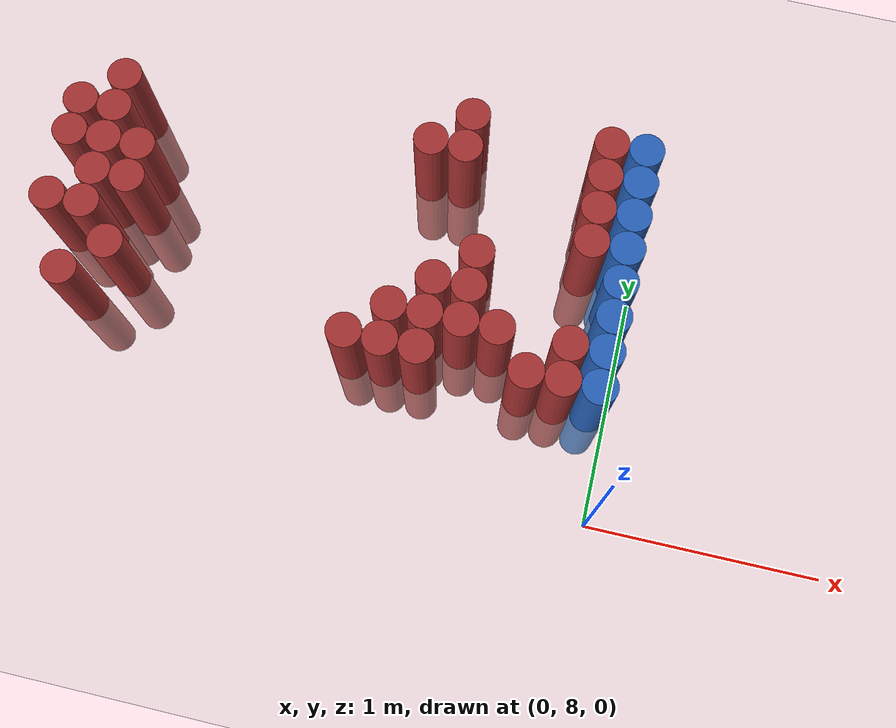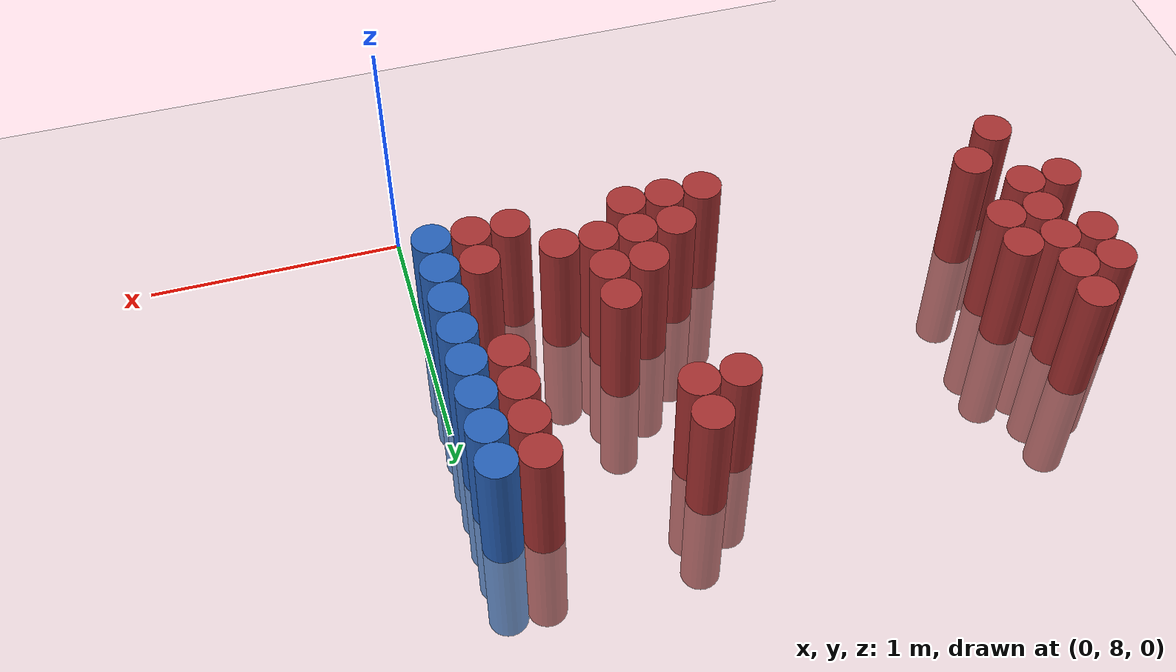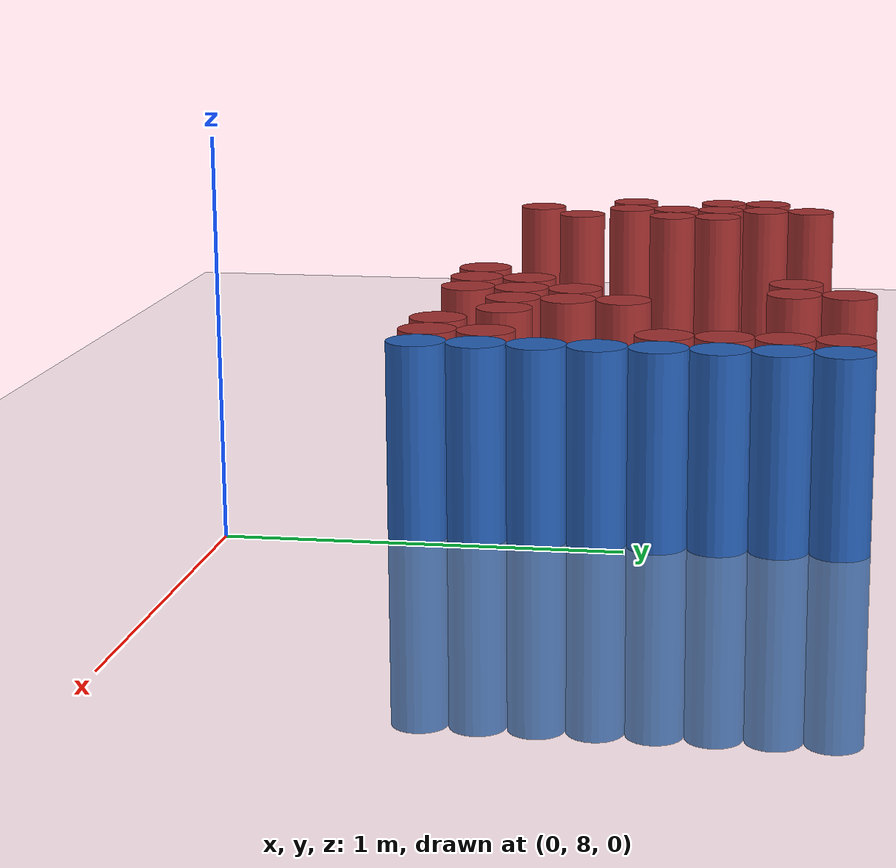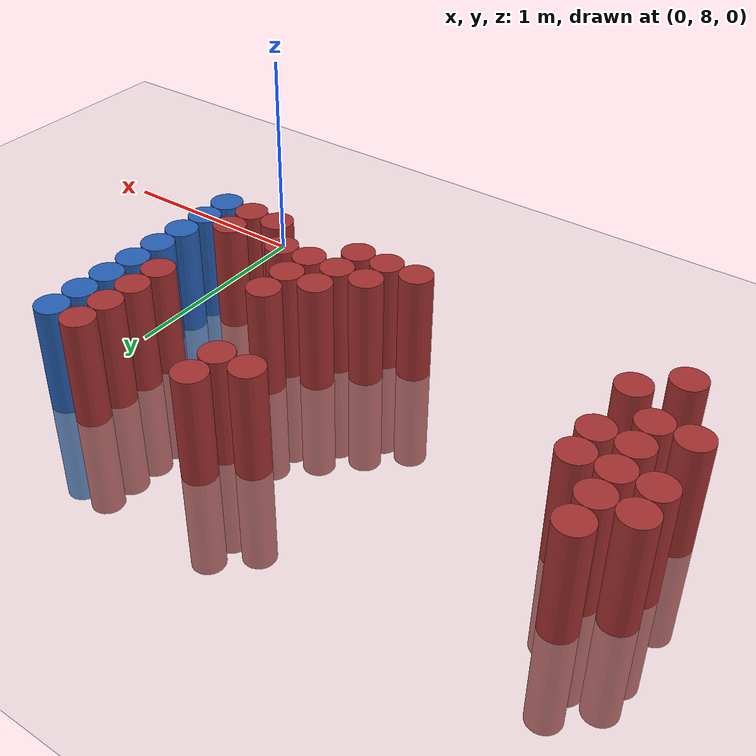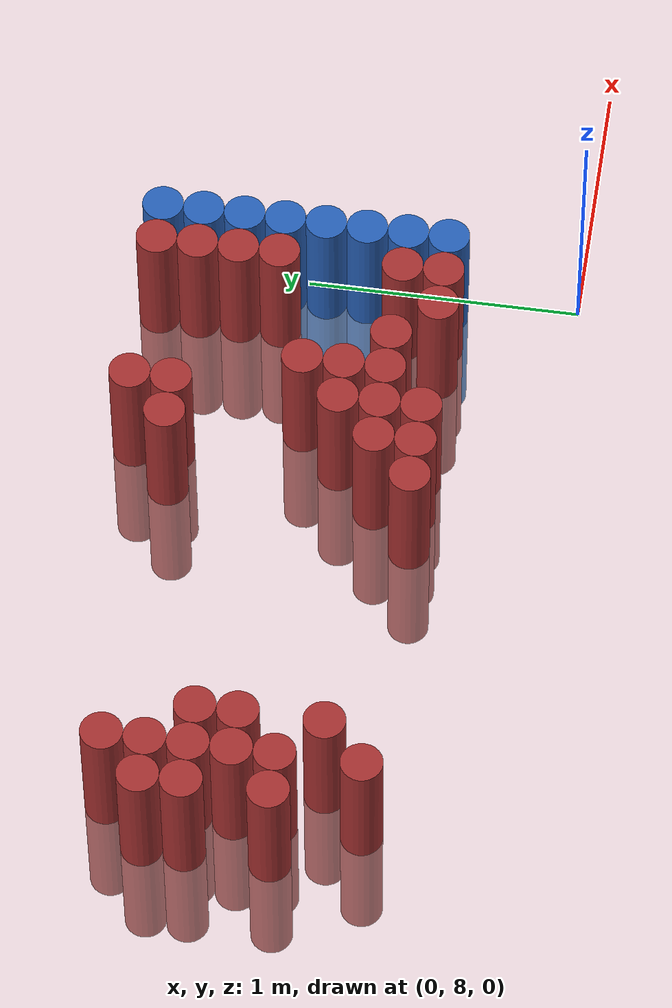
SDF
<sdf version="1.6">
 <world name="default">
  <model name="ground_plane">
   <static>1</static>
   <link name="link">
    <collision name="collision">
     <geometry><plane><normal>0 0 1</normal><size>100 100</size></plane></geometry>
     <surface><friction><ode><mu>100</mu><mu2>50</mu2></ode></friction></surface>
    </collision>
    <visual name="visual">
     <cast_shadows>0</cast_shadows>
     <geometry><plane><normal>0 0 1</normal><size>100 100</size></plane></geometry>
     <material>
      <script><uri>file://media/materials/scripts/gazebo.material</uri><name>Gazebo/Grey</name></script>
     </material>
    </visual>
   </link>
  </model>
  <model name="unit_cylinder_209">
   <static>1</static>
   <pose>-2.475000 8.775000 0.000000 0.000000 0.000000 0.000000</pose>
   <link name="link">
    <inertial>
     <mass>1</mass>
     <inertia><ixx>0.145833</ixx><ixy>0</ixy><ixz>0</ixz><iyy>0.145833</iyy><iyz>0</iyz><izz>0.125</izz></inertia>
    </inertial>
    <collision name="collision">
     <geometry><cylinder><radius>0.075000</radius><length>1</length></cylinder></geometry>
    </collision>
    <visual name="visual">
     <geometry><cylinder><radius>0.075000</radius><length>1</length></cylinder></geometry>
     <material>
      <ambient>0.648000 0.192000 0.192000 1</ambient>
      <diffuse>0.648000 0.192000 0.192000 1</diffuse>
     </material>
     <material>
      <script><name>Gazebo/Grey</name><uri>file://media/materials/scripts/gazebo.material</uri></script>
     </material>
    </visual>
    <sensor name="sensor_contact" type="contact"><contact><collision>collision</collision></contact></sensor>
   </link>
   <plugin filename="gz-sim-touchplugin-system" name="gz::sim::systems::TouchPlugin">
    <target>robot</target>
    <namespace>robot</namespace>
    <time>0.001</time>
    <enabled>true</enabled>
   </plugin>
  </model>
  <model name="unit_cylinder_210">
   <static>1</static>
   <pose>-2.475000 9.075000 0.000000 0.000000 0.000000 0.000000</pose>
   <link name="link">
    <inertial>
     <mass>1</mass>
     <inertia><ixx>0.145833</ixx><ixy>0</ixy><ixz>0</ixz><iyy>0.145833</iyy><iyz>0</iyz><izz>0.125</izz></inertia>
    </inertial>
    <collision name="collision">
     <geometry><cylinder><radius>0.075000</radius><length>1</length></cylinder></geometry>
    </collision>
    <visual name="visual">
     <geometry><cylinder><radius>0.075000</radius><length>1</length></cylinder></geometry>
     <material>
      <ambient>0.648000 0.192000 0.192000 1</ambient>
      <diffuse>0.648000 0.192000 0.192000 1</diffuse>
     </material>
     <material>
      <script><name>Gazebo/Grey</name><uri>file://media/materials/scripts/gazebo.material</uri></script>
     </material>
    </visual>
    <sensor name="sensor_contact" type="contact"><contact><collision>collision</collision></contact></sensor>
   </link>
   <plugin filename="gz-sim-touchplugin-system" name="gz::sim::systems::TouchPlugin">
    <target>robot</target>
    <namespace>robot</namespace>
    <time>0.001</time>
    <enabled>true</enabled>
   </plugin>
  </model>
  <model name="unit_cylinder_211">
   <static>1</static>
   <pose>-2.475000 9.225000 0.000000 0.000000 0.000000 0.000000</pose>
   <link name="link">
    <inertial>
     <mass>1</mass>
     <inertia><ixx>0.145833</ixx><ixy>0</ixy><ixz>0</ixz><iyy>0.145833</iyy><iyz>0</iyz><izz>0.125</izz></inertia>
    </inertial>
    <collision name="collision">
     <geometry><cylinder><radius>0.075000</radius><length>1</length></cylinder></geometry>
    </collision>
    <visual name="visual">
     <geometry><cylinder><radius>0.075000</radius><length>1</length></cylinder></geometry>
     <material>
      <ambient>0.648000 0.192000 0.192000 1</ambient>
      <diffuse>0.648000 0.192000 0.192000 1</diffuse>
     </material>
     <material>
      <script><name>Gazebo/Grey</name><uri>file://media/materials/scripts/gazebo.material</uri></script>
     </material>
    </visual>
    <sensor name="sensor_contact" type="contact"><contact><collision>collision</collision></contact></sensor>
   </link>
   <plugin filename="gz-sim-touchplugin-system" name="gz::sim::systems::TouchPlugin">
    <target>robot</target>
    <namespace>robot</namespace>
    <time>0.001</time>
    <enabled>true</enabled>
   </plugin>
  </model>
  <model name="unit_cylinder_214">
   <static>1</static>
   <pose>-2.325000 8.475000 0.000000 0.000000 0.000000 0.000000</pose>
   <link name="link">
    <inertial>
     <mass>1</mass>
     <inertia><ixx>0.145833</ixx><ixy>0</ixy><ixz>0</ixz><iyy>0.145833</iyy><iyz>0</iyz><izz>0.125</izz></inertia>
    </inertial>
    <collision name="collision">
     <geometry><cylinder><radius>0.075000</radius><length>1</length></cylinder></geometry>
    </collision>
    <visual name="visual">
     <geometry><cylinder><radius>0.075000</radius><length>1</length></cylinder></geometry>
     <material>
      <ambient>0.648000 0.192000 0.192000 1</ambient>
      <diffuse>0.648000 0.192000 0.192000 1</diffuse>
     </material>
     <material>
      <script><name>Gazebo/Grey</name><uri>file://media/materials/scripts/gazebo.material</uri></script>
     </material>
    </visual>
    <sensor name="sensor_contact" type="contact"><contact><collision>collision</collision></contact></sensor>
   </link>
   <plugin filename="gz-sim-touchplugin-system" name="gz::sim::systems::TouchPlugin">
    <target>robot</target>
    <namespace>robot</namespace>
    <time>0.001</time>
    <enabled>true</enabled>
   </plugin>
  </model>
  <model name="unit_cylinder_215">
   <static>1</static>
   <pose>-2.325000 8.775000 0.000000 0.000000 0.000000 0.000000</pose>
   <link name="link">
    <inertial>
     <mass>1</mass>
     <inertia><ixx>0.145833</ixx><ixy>0</ixy><ixz>0</ixz><iyy>0.145833</iyy><iyz>0</iyz><izz>0.125</izz></inertia>
    </inertial>
    <collision name="collision">
     <geometry><cylinder><radius>0.075000</radius><length>1</length></cylinder></geometry>
    </collision>
    <visual name="visual">
     <geometry><cylinder><radius>0.075000</radius><length>1</length></cylinder></geometry>
     <material>
      <ambient>0.648000 0.192000 0.192000 1</ambient>
      <diffuse>0.648000 0.192000 0.192000 1</diffuse>
     </material>
     <material>
      <script><name>Gazebo/Grey</name><uri>file://media/materials/scripts/gazebo.material</uri></script>
     </material>
    </visual>
    <sensor name="sensor_contact" type="contact"><contact><collision>collision</collision></contact></sensor>
   </link>
   <plugin filename="gz-sim-touchplugin-system" name="gz::sim::systems::TouchPlugin">
    <target>robot</target>
    <namespace>robot</namespace>
    <time>0.001</time>
    <enabled>true</enabled>
   </plugin>
  </model>
  <model name="unit_cylinder_216">
   <static>1</static>
   <pose>-2.325000 8.925000 0.000000 0.000000 0.000000 0.000000</pose>
   <link name="link">
    <inertial>
     <mass>1</mass>
     <inertia><ixx>0.145833</ixx><ixy>0</ixy><ixz>0</ixz><iyy>0.145833</iyy><iyz>0</iyz><izz>0.125</izz></inertia>
    </inertial>
    <collision name="collision">
     <geometry><cylinder><radius>0.075000</radius><length>1</length></cylinder></geometry>
    </collision>
    <visual name="visual">
     <geometry><cylinder><radius>0.075000</radius><length>1</length></cylinder></geometry>
     <material>
      <ambient>0.648000 0.192000 0.192000 1</ambient>
      <diffuse>0.648000 0.192000 0.192000 1</diffuse>
     </material>
     <material>
      <script><name>Gazebo/Grey</name><uri>file://media/materials/scripts/gazebo.material</uri></script>
     </material>
    </visual>
    <sensor name="sensor_contact" type="contact"><contact><collision>collision</collision></contact></sensor>
   </link>
   <plugin filename="gz-sim-touchplugin-system" name="gz::sim::systems::TouchPlugin">
    <target>robot</target>
    <namespace>robot</namespace>
    <time>0.001</time>
    <enabled>true</enabled>
   </plugin>
  </model>
  <model name="unit_cylinder_217">
   <static>1</static>
   <pose>-2.325000 9.075000 0.000000 0.000000 0.000000 0.000000</pose>
   <link name="link">
    <inertial>
     <mass>1</mass>
     <inertia><ixx>0.145833</ixx><ixy>0</ixy><ixz>0</ixz><iyy>0.145833</iyy><iyz>0</iyz><izz>0.125</izz></inertia>
    </inertial>
    <collision name="collision">
     <geometry><cylinder><radius>0.075000</radius><length>1</length></cylinder></geometry>
    </collision>
    <visual name="visual">
     <geometry><cylinder><radius>0.075000</radius><length>1</length></cylinder></geometry>
     <material>
      <ambient>0.648000 0.192000 0.192000 1</ambient>
      <diffuse>0.648000 0.192000 0.192000 1</diffuse>
     </material>
     <material>
      <script><name>Gazebo/Grey</name><uri>file://media/materials/scripts/gazebo.material</uri></script>
     </material>
    </visual>
    <sensor name="sensor_contact" type="contact"><contact><collision>collision</collision></contact></sensor>
   </link>
   <plugin filename="gz-sim-touchplugin-system" name="gz::sim::systems::TouchPlugin">
    <target>robot</target>
    <namespace>robot</namespace>
    <time>0.001</time>
    <enabled>true</enabled>
   </plugin>
  </model>
  <model name="unit_cylinder_218">
   <static>1</static>
   <pose>-2.325000 9.225000 0.000000 0.000000 0.000000 0.000000</pose>
   <link name="link">
    <inertial>
     <mass>1</mass>
     <inertia><ixx>0.145833</ixx><ixy>0</ixy><ixz>0</ixz><iyy>0.145833</iyy><iyz>0</iyz><izz>0.125</izz></inertia>
    </inertial>
    <collision name="collision">
     <geometry><cylinder><radius>0.075000</radius><length>1</length></cylinder></geometry>
    </collision>
    <visual name="visual">
     <geometry><cylinder><radius>0.075000</radius><length>1</length></cylinder></geometry>
     <material>
      <ambient>0.648000 0.192000 0.192000 1</ambient>
      <diffuse>0.648000 0.192000 0.192000 1</diffuse>
     </material>
     <material>
      <script><name>Gazebo/Grey</name><uri>file://media/materials/scripts/gazebo.material</uri></script>
     </material>
    </visual>
    <sensor name="sensor_contact" type="contact"><contact><collision>collision</collision></contact></sensor>
   </link>
   <plugin filename="gz-sim-touchplugin-system" name="gz::sim::systems::TouchPlugin">
    <target>robot</target>
    <namespace>robot</namespace>
    <time>0.001</time>
    <enabled>true</enabled>
   </plugin>
  </model>
  <model name="unit_cylinder_219">
   <static>1</static>
   <pose>-2.325000 9.375000 0.000000 0.000000 0.000000 0.000000</pose>
   <link name="link">
    <inertial>
     <mass>1</mass>
     <inertia><ixx>0.145833</ixx><ixy>0</ixy><ixz>0</ixz><iyy>0.145833</iyy><iyz>0</iyz><izz>0.125</izz></inertia>
    </inertial>
    <collision name="collision">
     <geometry><cylinder><radius>0.075000</radius><length>1</length></cylinder></geometry>
    </collision>
    <visual name="visual">
     <geometry><cylinder><radius>0.075000</radius><length>1</length></cylinder></geometry>
     <material>
      <ambient>0.648000 0.192000 0.192000 1</ambient>
      <diffuse>0.648000 0.192000 0.192000 1</diffuse>
     </material>
     <material>
      <script><name>Gazebo/Grey</name><uri>file://media/materials/scripts/gazebo.material</uri></script>
     </material>
    </visual>
    <sensor name="sensor_contact" type="contact"><contact><collision>collision</collision></contact></sensor>
   </link>
   <plugin filename="gz-sim-touchplugin-system" name="gz::sim::systems::TouchPlugin">
    <target>robot</target>
    <namespace>robot</namespace>
    <time>0.001</time>
    <enabled>true</enabled>
   </plugin>
  </model>
  <model name="unit_cylinder_222">
   <static>1</static>
   <pose>-2.175000 8.625000 0.000000 0.000000 0.000000 0.000000</pose>
   <link name="link">
    <inertial>
     <mass>1</mass>
     <inertia><ixx>0.145833</ixx><ixy>0</ixy><ixz>0</ixz><iyy>0.145833</iyy><iyz>0</iyz><izz>0.125</izz></inertia>
    </inertial>
    <collision name="collision">
     <geometry><cylinder><radius>0.075000</radius><length>1</length></cylinder></geometry>
    </collision>
    <visual name="visual">
     <geometry><cylinder><radius>0.075000</radius><length>1</length></cylinder></geometry>
     <material>
      <ambient>0.648000 0.192000 0.192000 1</ambient>
      <diffuse>0.648000 0.192000 0.192000 1</diffuse>
     </material>
     <material>
      <script><name>Gazebo/Grey</name><uri>file://media/materials/scripts/gazebo.material</uri></script>
     </material>
    </visual>
    <sensor name="sensor_contact" type="contact"><contact><collision>collision</collision></contact></sensor>
   </link>
   <plugin filename="gz-sim-touchplugin-system" name="gz::sim::systems::TouchPlugin">
    <target>robot</target>
    <namespace>robot</namespace>
    <time>0.001</time>
    <enabled>true</enabled>
   </plugin>
  </model>
  <model name="unit_cylinder_223">
   <static>1</static>
   <pose>-2.175000 8.925000 0.000000 0.000000 0.000000 0.000000</pose>
   <link name="link">
    <inertial>
     <mass>1</mass>
     <inertia><ixx>0.145833</ixx><ixy>0</ixy><ixz>0</ixz><iyy>0.145833</iyy><iyz>0</iyz><izz>0.125</izz></inertia>
    </inertial>
    <collision name="collision">
     <geometry><cylinder><radius>0.075000</radius><length>1</length></cylinder></geometry>
    </collision>
    <visual name="visual">
     <geometry><cylinder><radius>0.075000</radius><length>1</length></cylinder></geometry>
     <material>
      <ambient>0.648000 0.192000 0.192000 1</ambient>
      <diffuse>0.648000 0.192000 0.192000 1</diffuse>
     </material>
     <material>
      <script><name>Gazebo/Grey</name><uri>file://media/materials/scripts/gazebo.material</uri></script>
     </material>
    </visual>
    <sensor name="sensor_contact" type="contact"><contact><collision>collision</collision></contact></sensor>
   </link>
   <plugin filename="gz-sim-touchplugin-system" name="gz::sim::systems::TouchPlugin">
    <target>robot</target>
    <namespace>robot</namespace>
    <time>0.001</time>
    <enabled>true</enabled>
   </plugin>
  </model>
  <model name="unit_cylinder_224">
   <static>1</static>
   <pose>-2.175000 9.075000 0.000000 0.000000 0.000000 0.000000</pose>
   <link name="link">
    <inertial>
     <mass>1</mass>
     <inertia><ixx>0.145833</ixx><ixy>0</ixy><ixz>0</ixz><iyy>0.145833</iyy><iyz>0</iyz><izz>0.125</izz></inertia>
    </inertial>
    <collision name="collision">
     <geometry><cylinder><radius>0.075000</radius><length>1</length></cylinder></geometry>
    </collision>
    <visual name="visual">
     <geometry><cylinder><radius>0.075000</radius><length>1</length></cylinder></geometry>
     <material>
      <ambient>0.648000 0.192000 0.192000 1</ambient>
      <diffuse>0.648000 0.192000 0.192000 1</diffuse>
     </material>
     <material>
      <script><name>Gazebo/Grey</name><uri>file://media/materials/scripts/gazebo.material</uri></script>
     </material>
    </visual>
    <sensor name="sensor_contact" type="contact"><contact><collision>collision</collision></contact></sensor>
   </link>
   <plugin filename="gz-sim-touchplugin-system" name="gz::sim::systems::TouchPlugin">
    <target>robot</target>
    <namespace>robot</namespace>
    <time>0.001</time>
    <enabled>true</enabled>
   </plugin>
  </model>
  <model name="unit_cylinder_243">
   <static>1</static>
   <pose>-1.125000 8.475000 0.000000 0.000000 0.000000 0.000000</pose>
   <link name="link">
    <inertial>
     <mass>1</mass>
     <inertia><ixx>0.145833</ixx><ixy>0</ixy><ixz>0</ixz><iyy>0.145833</iyy><iyz>0</iyz><izz>0.125</izz></inertia>
    </inertial>
    <collision name="collision">
     <geometry><cylinder><radius>0.075000</radius><length>1</length></cylinder></geometry>
    </collision>
    <visual name="visual">
     <geometry><cylinder><radius>0.075000</radius><length>1</length></cylinder></geometry>
     <material>
      <ambient>0.648000 0.192000 0.192000 1</ambient>
      <diffuse>0.648000 0.192000 0.192000 1</diffuse>
     </material>
     <material>
      <script><name>Gazebo/Grey</name><uri>file://media/materials/scripts/gazebo.material</uri></script>
     </material>
    </visual>
    <sensor name="sensor_contact" type="contact"><contact><collision>collision</collision></contact></sensor>
   </link>
   <plugin filename="gz-sim-touchplugin-system" name="gz::sim::systems::TouchPlugin">
    <target>robot</target>
    <namespace>robot</namespace>
    <time>0.001</time>
    <enabled>true</enabled>
   </plugin>
  </model>
  <model name="unit_cylinder_246">
   <static>1</static>
   <pose>-0.975000 8.475000 0.000000 0.000000 0.000000 0.000000</pose>
   <link name="link">
    <inertial>
     <mass>1</mass>
     <inertia><ixx>0.145833</ixx><ixy>0</ixy><ixz>0</ixz><iyy>0.145833</iyy><iyz>0</iyz><izz>0.125</izz></inertia>
    </inertial>
    <collision name="collision">
     <geometry><cylinder><radius>0.075000</radius><length>1</length></cylinder></geometry>
    </collision>
    <visual name="visual">
     <geometry><cylinder><radius>0.075000</radius><length>1</length></cylinder></geometry>
     <material>
      <ambient>0.648000 0.192000 0.192000 1</ambient>
      <diffuse>0.648000 0.192000 0.192000 1</diffuse>
     </material>
     <material>
      <script><name>Gazebo/Grey</name><uri>file://media/materials/scripts/gazebo.material</uri></script>
     </material>
    </visual>
    <sensor name="sensor_contact" type="contact"><contact><collision>collision</collision></contact></sensor>
   </link>
   <plugin filename="gz-sim-touchplugin-system" name="gz::sim::systems::TouchPlugin">
    <target>robot</target>
    <namespace>robot</namespace>
    <time>0.001</time>
    <enabled>true</enabled>
   </plugin>
  </model>
  <model name="unit_cylinder_247">
   <static>1</static>
   <pose>-0.975000 8.625000 0.000000 0.000000 0.000000 0.000000</pose>
   <link name="link">
    <inertial>
     <mass>1</mass>
     <inertia><ixx>0.145833</ixx><ixy>0</ixy><ixz>0</ixz><iyy>0.145833</iyy><iyz>0</iyz><izz>0.125</izz></inertia>
    </inertial>
    <collision name="collision">
     <geometry><cylinder><radius>0.075000</radius><length>1</length></cylinder></geometry>
    </collision>
    <visual name="visual">
     <geometry><cylinder><radius>0.075000</radius><length>1</length></cylinder></geometry>
     <material>
      <ambient>0.648000 0.192000 0.192000 1</ambient>
      <diffuse>0.648000 0.192000 0.192000 1</diffuse>
     </material>
     <material>
      <script><name>Gazebo/Grey</name><uri>file://media/materials/scripts/gazebo.material</uri></script>
     </material>
    </visual>
    <sensor name="sensor_contact" type="contact"><contact><collision>collision</collision></contact></sensor>
   </link>
   <plugin filename="gz-sim-touchplugin-system" name="gz::sim::systems::TouchPlugin">
    <target>robot</target>
    <namespace>robot</namespace>
    <time>0.001</time>
    <enabled>true</enabled>
   </plugin>
  </model>
  <model name="unit_cylinder_248">
   <static>1</static>
   <pose>-0.975000 9.375000 0.000000 0.000000 0.000000 0.000000</pose>
   <link name="link">
    <inertial>
     <mass>1</mass>
     <inertia><ixx>0.145833</ixx><ixy>0</ixy><ixz>0</ixz><iyy>0.145833</iyy><iyz>0</iyz><izz>0.125</izz></inertia>
    </inertial>
    <collision name="collision">
     <geometry><cylinder><radius>0.075000</radius><length>1</length></cylinder></geometry>
    </collision>
    <visual name="visual">
     <geometry><cylinder><radius>0.075000</radius><length>1</length></cylinder></geometry>
     <material>
      <ambient>0.648000 0.192000 0.192000 1</ambient>
      <diffuse>0.648000 0.192000 0.192000 1</diffuse>
     </material>
     <material>
      <script><name>Gazebo/Grey</name><uri>file://media/materials/scripts/gazebo.material</uri></script>
     </material>
    </visual>
    <sensor name="sensor_contact" type="contact"><contact><collision>collision</collision></contact></sensor>
   </link>
   <plugin filename="gz-sim-touchplugin-system" name="gz::sim::systems::TouchPlugin">
    <target>robot</target>
    <namespace>robot</namespace>
    <time>0.001</time>
    <enabled>true</enabled>
   </plugin>
  </model>
  <model name="unit_cylinder_249">
   <static>1</static>
   <pose>-0.825000 8.475000 0.000000 0.000000 0.000000 0.000000</pose>
   <link name="link">
    <inertial>
     <mass>1</mass>
     <inertia><ixx>0.145833</ixx><ixy>0</ixy><ixz>0</ixz><iyy>0.145833</iyy><iyz>0</iyz><izz>0.125</izz></inertia>
    </inertial>
    <collision name="collision">
     <geometry><cylinder><radius>0.075000</radius><length>1</length></cylinder></geometry>
    </collision>
    <visual name="visual">
     <geometry><cylinder><radius>0.075000</radius><length>1</length></cylinder></geometry>
     <material>
      <ambient>0.648000 0.192000 0.192000 1</ambient>
      <diffuse>0.648000 0.192000 0.192000 1</diffuse>
     </material>
     <material>
      <script><name>Gazebo/Grey</name><uri>file://media/materials/scripts/gazebo.material</uri></script>
     </material>
    </visual>
    <sensor name="sensor_contact" type="contact"><contact><collision>collision</collision></contact></sensor>
   </link>
   <plugin filename="gz-sim-touchplugin-system" name="gz::sim::systems::TouchPlugin">
    <target>robot</target>
    <namespace>robot</namespace>
    <time>0.001</time>
    <enabled>true</enabled>
   </plugin>
  </model>
  <model name="unit_cylinder_250">
   <static>1</static>
   <pose>-0.825000 8.625000 0.000000 0.000000 0.000000 0.000000</pose>
   <link name="link">
    <inertial>
     <mass>1</mass>
     <inertia><ixx>0.145833</ixx><ixy>0</ixy><ixz>0</ixz><iyy>0.145833</iyy><iyz>0</iyz><izz>0.125</izz></inertia>
    </inertial>
    <collision name="collision">
     <geometry><cylinder><radius>0.075000</radius><length>1</length></cylinder></geometry>
    </collision>
    <visual name="visual">
     <geometry><cylinder><radius>0.075000</radius><length>1</length></cylinder></geometry>
     <material>
      <ambient>0.648000 0.192000 0.192000 1</ambient>
      <diffuse>0.648000 0.192000 0.192000 1</diffuse>
     </material>
     <material>
      <script><name>Gazebo/Grey</name><uri>file://media/materials/scripts/gazebo.material</uri></script>
     </material>
    </visual>
    <sensor name="sensor_contact" type="contact"><contact><collision>collision</collision></contact></sensor>
   </link>
   <plugin filename="gz-sim-touchplugin-system" name="gz::sim::systems::TouchPlugin">
    <target>robot</target>
    <namespace>robot</namespace>
    <time>0.001</time>
    <enabled>true</enabled>
   </plugin>
  </model>
  <model name="unit_cylinder_251">
   <static>1</static>
   <pose>-0.825000 8.775000 0.000000 0.000000 0.000000 0.000000</pose>
   <link name="link">
    <inertial>
     <mass>1</mass>
     <inertia><ixx>0.145833</ixx><ixy>0</ixy><ixz>0</ixz><iyy>0.145833</iyy><iyz>0</iyz><izz>0.125</izz></inertia>
    </inertial>
    <collision name="collision">
     <geometry><cylinder><radius>0.075000</radius><length>1</length></cylinder></geometry>
    </collision>
    <visual name="visual">
     <geometry><cylinder><radius>0.075000</radius><length>1</length></cylinder></geometry>
     <material>
      <ambient>0.648000 0.192000 0.192000 1</ambient>
      <diffuse>0.648000 0.192000 0.192000 1</diffuse>
     </material>
     <material>
      <script><name>Gazebo/Grey</name><uri>file://media/materials/scripts/gazebo.material</uri></script>
     </material>
    </visual>
    <sensor name="sensor_contact" type="contact"><contact><collision>collision</collision></contact></sensor>
   </link>
   <plugin filename="gz-sim-touchplugin-system" name="gz::sim::systems::TouchPlugin">
    <target>robot</target>
    <namespace>robot</namespace>
    <time>0.001</time>
    <enabled>true</enabled>
   </plugin>
  </model>
  <model name="unit_cylinder_252">
   <static>1</static>
   <pose>-0.825000 9.375000 0.000000 0.000000 0.000000 0.000000</pose>
   <link name="link">
    <inertial>
     <mass>1</mass>
     <inertia><ixx>0.145833</ixx><ixy>0</ixy><ixz>0</ixz><iyy>0.145833</iyy><iyz>0</iyz><izz>0.125</izz></inertia>
    </inertial>
    <collision name="collision">
     <geometry><cylinder><radius>0.075000</radius><length>1</length></cylinder></geometry>
    </collision>
    <visual name="visual">
     <geometry><cylinder><radius>0.075000</radius><length>1</length></cylinder></geometry>
     <material>
      <ambient>0.648000 0.192000 0.192000 1</ambient>
      <diffuse>0.648000 0.192000 0.192000 1</diffuse>
     </material>
     <material>
      <script><name>Gazebo/Grey</name><uri>file://media/materials/scripts/gazebo.material</uri></script>
     </material>
    </visual>
    <sensor name="sensor_contact" type="contact"><contact><collision>collision</collision></contact></sensor>
   </link>
   <plugin filename="gz-sim-touchplugin-system" name="gz::sim::systems::TouchPlugin">
    <target>robot</target>
    <namespace>robot</namespace>
    <time>0.001</time>
    <enabled>true</enabled>
   </plugin>
  </model>
  <model name="unit_cylinder_253">
   <static>1</static>
   <pose>-0.825000 9.525000 0.000000 0.000000 0.000000 0.000000</pose>
   <link name="link">
    <inertial>
     <mass>1</mass>
     <inertia><ixx>0.145833</ixx><ixy>0</ixy><ixz>0</ixz><iyy>0.145833</iyy><iyz>0</iyz><izz>0.125</izz></inertia>
    </inertial>
    <collision name="collision">
     <geometry><cylinder><radius>0.075000</radius><length>1</length></cylinder></geometry>
    </collision>
    <visual name="visual">
     <geometry><cylinder><radius>0.075000</radius><length>1</length></cylinder></geometry>
     <material>
      <ambient>0.648000 0.192000 0.192000 1</ambient>
      <diffuse>0.648000 0.192000 0.192000 1</diffuse>
     </material>
     <material>
      <script><name>Gazebo/Grey</name><uri>file://media/materials/scripts/gazebo.material</uri></script>
     </material>
    </visual>
    <sensor name="sensor_contact" type="contact"><contact><collision>collision</collision></contact></sensor>
   </link>
   <plugin filename="gz-sim-touchplugin-system" name="gz::sim::systems::TouchPlugin">
    <target>robot</target>
    <namespace>robot</namespace>
    <time>0.001</time>
    <enabled>true</enabled>
   </plugin>
  </model>
  <model name="unit_cylinder_254">
   <static>1</static>
   <pose>-0.675000 8.625000 0.000000 0.000000 0.000000 0.000000</pose>
   <link name="link">
    <inertial>
     <mass>1</mass>
     <inertia><ixx>0.145833</ixx><ixy>0</ixy><ixz>0</ixz><iyy>0.145833</iyy><iyz>0</iyz><izz>0.125</izz></inertia>
    </inertial>
    <collision name="collision">
     <geometry><cylinder><radius>0.075000</radius><length>1</length></cylinder></geometry>
    </collision>
    <visual name="visual">
     <geometry><cylinder><radius>0.075000</radius><length>1</length></cylinder></geometry>
     <material>
      <ambient>0.648000 0.192000 0.192000 1</ambient>
      <diffuse>0.648000 0.192000 0.192000 1</diffuse>
     </material>
     <material>
      <script><name>Gazebo/Grey</name><uri>file://media/materials/scripts/gazebo.material</uri></script>
     </material>
    </visual>
    <sensor name="sensor_contact" type="contact"><contact><collision>collision</collision></contact></sensor>
   </link>
   <plugin filename="gz-sim-touchplugin-system" name="gz::sim::systems::TouchPlugin">
    <target>robot</target>
    <namespace>robot</namespace>
    <time>0.001</time>
    <enabled>true</enabled>
   </plugin>
  </model>
  <model name="unit_cylinder_255">
   <static>1</static>
   <pose>-0.675000 8.775000 0.000000 0.000000 0.000000 0.000000</pose>
   <link name="link">
    <inertial>
     <mass>1</mass>
     <inertia><ixx>0.145833</ixx><ixy>0</ixy><ixz>0</ixz><iyy>0.145833</iyy><iyz>0</iyz><izz>0.125</izz></inertia>
    </inertial>
    <collision name="collision">
     <geometry><cylinder><radius>0.075000</radius><length>1</length></cylinder></geometry>
    </collision>
    <visual name="visual">
     <geometry><cylinder><radius>0.075000</radius><length>1</length></cylinder></geometry>
     <material>
      <ambient>0.648000 0.192000 0.192000 1</ambient>
      <diffuse>0.648000 0.192000 0.192000 1</diffuse>
     </material>
     <material>
      <script><name>Gazebo/Grey</name><uri>file://media/materials/scripts/gazebo.material</uri></script>
     </material>
    </visual>
    <sensor name="sensor_contact" type="contact"><contact><collision>collision</collision></contact></sensor>
   </link>
   <plugin filename="gz-sim-touchplugin-system" name="gz::sim::systems::TouchPlugin">
    <target>robot</target>
    <namespace>robot</namespace>
    <time>0.001</time>
    <enabled>true</enabled>
   </plugin>
  </model>
  <model name="unit_cylinder_256">
   <static>1</static>
   <pose>-0.675000 8.925000 0.000000 0.000000 0.000000 0.000000</pose>
   <link name="link">
    <inertial>
     <mass>1</mass>
     <inertia><ixx>0.145833</ixx><ixy>0</ixy><ixz>0</ixz><iyy>0.145833</iyy><iyz>0</iyz><izz>0.125</izz></inertia>
    </inertial>
    <collision name="collision">
     <geometry><cylinder><radius>0.075000</radius><length>1</length></cylinder></geometry>
    </collision>
    <visual name="visual">
     <geometry><cylinder><radius>0.075000</radius><length>1</length></cylinder></geometry>
     <material>
      <ambient>0.648000 0.192000 0.192000 1</ambient>
      <diffuse>0.648000 0.192000 0.192000 1</diffuse>
     </material>
     <material>
      <script><name>Gazebo/Grey</name><uri>file://media/materials/scripts/gazebo.material</uri></script>
     </material>
    </visual>
    <sensor name="sensor_contact" type="contact"><contact><collision>collision</collision></contact></sensor>
   </link>
   <plugin filename="gz-sim-touchplugin-system" name="gz::sim::systems::TouchPlugin">
    <target>robot</target>
    <namespace>robot</namespace>
    <time>0.001</time>
    <enabled>true</enabled>
   </plugin>
  </model>
  <model name="unit_cylinder_258">
   <static>1</static>
   <pose>-0.525000 8.625000 0.000000 0.000000 0.000000 0.000000</pose>
   <link name="link">
    <inertial>
     <mass>1</mass>
     <inertia><ixx>0.145833</ixx><ixy>0</ixy><ixz>0</ixz><iyy>0.145833</iyy><iyz>0</iyz><izz>0.125</izz></inertia>
    </inertial>
    <collision name="collision">
     <geometry><cylinder><radius>0.075000</radius><length>1</length></cylinder></geometry>
    </collision>
    <visual name="visual">
     <geometry><cylinder><radius>0.075000</radius><length>1</length></cylinder></geometry>
     <material>
      <ambient>0.648000 0.192000 0.192000 1</ambient>
      <diffuse>0.648000 0.192000 0.192000 1</diffuse>
     </material>
     <material>
      <script><name>Gazebo/Grey</name><uri>file://media/materials/scripts/gazebo.material</uri></script>
     </material>
    </visual>
    <sensor name="sensor_contact" type="contact"><contact><collision>collision</collision></contact></sensor>
   </link>
   <plugin filename="gz-sim-touchplugin-system" name="gz::sim::systems::TouchPlugin">
    <target>robot</target>
    <namespace>robot</namespace>
    <time>0.001</time>
    <enabled>true</enabled>
   </plugin>
  </model>
  <model name="unit_cylinder_266">
   <static>1</static>
   <pose>-0.375000 8.475000 0.000000 0.000000 0.000000 0.000000</pose>
   <link name="link">
    <inertial>
     <mass>1</mass>
     <inertia><ixx>0.145833</ixx><ixy>0</ixy><ixz>0</ixz><iyy>0.145833</iyy><iyz>0</iyz><izz>0.125</izz></inertia>
    </inertial>
    <collision name="collision">
     <geometry><cylinder><radius>0.075000</radius><length>1</length></cylinder></geometry>
    </collision>
    <visual name="visual">
     <geometry><cylinder><radius>0.075000</radius><length>1</length></cylinder></geometry>
     <material>
      <ambient>0.648000 0.192000 0.192000 1</ambient>
      <diffuse>0.648000 0.192000 0.192000 1</diffuse>
     </material>
     <material>
      <script><name>Gazebo/Grey</name><uri>file://media/materials/scripts/gazebo.material</uri></script>
     </material>
    </visual>
    <sensor name="sensor_contact" type="contact"><contact><collision>collision</collision></contact></sensor>
   </link>
   <plugin filename="gz-sim-touchplugin-system" name="gz::sim::systems::TouchPlugin">
    <target>robot</target>
    <namespace>robot</namespace>
    <time>0.001</time>
    <enabled>true</enabled>
   </plugin>
  </model>
  <model name="unit_cylinder_279">
   <static>1</static>
   <pose>-0.225000 8.475000 0.000000 0.000000 0.000000 0.000000</pose>
   <link name="link">
    <inertial>
     <mass>1</mass>
     <inertia><ixx>0.145833</ixx><ixy>0</ixy><ixz>0</ixz><iyy>0.145833</iyy><iyz>0</iyz><izz>0.125</izz></inertia>
    </inertial>
    <collision name="collision">
     <geometry><cylinder><radius>0.075000</radius><length>1</length></cylinder></geometry>
    </collision>
    <visual name="visual">
     <geometry><cylinder><radius>0.075000</radius><length>1</length></cylinder></geometry>
     <material>
      <ambient>0.648000 0.192000 0.192000 1</ambient>
      <diffuse>0.648000 0.192000 0.192000 1</diffuse>
     </material>
     <material>
      <script><name>Gazebo/Grey</name><uri>file://media/materials/scripts/gazebo.material</uri></script>
     </material>
    </visual>
    <sensor name="sensor_contact" type="contact"><contact><collision>collision</collision></contact></sensor>
   </link>
   <plugin filename="gz-sim-touchplugin-system" name="gz::sim::systems::TouchPlugin">
    <target>robot</target>
    <namespace>robot</namespace>
    <time>0.001</time>
    <enabled>true</enabled>
   </plugin>
  </model>
  <model name="unit_cylinder_280">
   <static>1</static>
   <pose>-0.225000 8.625000 0.000000 0.000000 0.000000 0.000000</pose>
   <link name="link">
    <inertial>
     <mass>1</mass>
     <inertia><ixx>0.145833</ixx><ixy>0</ixy><ixz>0</ixz><iyy>0.145833</iyy><iyz>0</iyz><izz>0.125</izz></inertia>
    </inertial>
    <collision name="collision">
     <geometry><cylinder><radius>0.075000</radius><length>1</length></cylinder></geometry>
    </collision>
    <visual name="visual">
     <geometry><cylinder><radius>0.075000</radius><length>1</length></cylinder></geometry>
     <material>
      <ambient>0.648000 0.192000 0.192000 1</ambient>
      <diffuse>0.648000 0.192000 0.192000 1</diffuse>
     </material>
     <material>
      <script><name>Gazebo/Grey</name><uri>file://media/materials/scripts/gazebo.material</uri></script>
     </material>
    </visual>
    <sensor name="sensor_contact" type="contact"><contact><collision>collision</collision></contact></sensor>
   </link>
   <plugin filename="gz-sim-touchplugin-system" name="gz::sim::systems::TouchPlugin">
    <target>robot</target>
    <namespace>robot</namespace>
    <time>0.001</time>
    <enabled>true</enabled>
   </plugin>
  </model>
  <model name="unit_cylinder_281">
   <static>1</static>
   <pose>-0.225000 9.075000 0.000000 0.000000 0.000000 0.000000</pose>
   <link name="link">
    <inertial>
     <mass>1</mass>
     <inertia><ixx>0.145833</ixx><ixy>0</ixy><ixz>0</ixz><iyy>0.145833</iyy><iyz>0</iyz><izz>0.125</izz></inertia>
    </inertial>
    <collision name="collision">
     <geometry><cylinder><radius>0.075000</radius><length>1</length></cylinder></geometry>
    </collision>
    <visual name="visual">
     <geometry><cylinder><radius>0.075000</radius><length>1</length></cylinder></geometry>
     <material>
      <ambient>0.648000 0.192000 0.192000 1</ambient>
      <diffuse>0.648000 0.192000 0.192000 1</diffuse>
     </material>
     <material>
      <script><name>Gazebo/Grey</name><uri>file://media/materials/scripts/gazebo.material</uri></script>
     </material>
    </visual>
    <sensor name="sensor_contact" type="contact"><contact><collision>collision</collision></contact></sensor>
   </link>
   <plugin filename="gz-sim-touchplugin-system" name="gz::sim::systems::TouchPlugin">
    <target>robot</target>
    <namespace>robot</namespace>
    <time>0.001</time>
    <enabled>true</enabled>
   </plugin>
  </model>
  <model name="unit_cylinder_282">
   <static>1</static>
   <pose>-0.225000 9.225000 0.000000 0.000000 0.000000 0.000000</pose>
   <link name="link">
    <inertial>
     <mass>1</mass>
     <inertia><ixx>0.145833</ixx><ixy>0</ixy><ixz>0</ixz><iyy>0.145833</iyy><iyz>0</iyz><izz>0.125</izz></inertia>
    </inertial>
    <collision name="collision">
     <geometry><cylinder><radius>0.075000</radius><length>1</length></cylinder></geometry>
    </collision>
    <visual name="visual">
     <geometry><cylinder><radius>0.075000</radius><length>1</length></cylinder></geometry>
     <material>
      <ambient>0.648000 0.192000 0.192000 1</ambient>
      <diffuse>0.648000 0.192000 0.192000 1</diffuse>
     </material>
     <material>
      <script><name>Gazebo/Grey</name><uri>file://media/materials/scripts/gazebo.material</uri></script>
     </material>
    </visual>
    <sensor name="sensor_contact" type="contact"><contact><collision>collision</collision></contact></sensor>
   </link>
   <plugin filename="gz-sim-touchplugin-system" name="gz::sim::systems::TouchPlugin">
    <target>robot</target>
    <namespace>robot</namespace>
    <time>0.001</time>
    <enabled>true</enabled>
   </plugin>
  </model>
  <model name="unit_cylinder_283">
   <static>1</static>
   <pose>-0.225000 9.375000 0.000000 0.000000 0.000000 0.000000</pose>
   <link name="link">
    <inertial>
     <mass>1</mass>
     <inertia><ixx>0.145833</ixx><ixy>0</ixy><ixz>0</ixz><iyy>0.145833</iyy><iyz>0</iyz><izz>0.125</izz></inertia>
    </inertial>
    <collision name="collision">
     <geometry><cylinder><radius>0.075000</radius><length>1</length></cylinder></geometry>
    </collision>
    <visual name="visual">
     <geometry><cylinder><radius>0.075000</radius><length>1</length></cylinder></geometry>
     <material>
      <ambient>0.648000 0.192000 0.192000 1</ambient>
      <diffuse>0.648000 0.192000 0.192000 1</diffuse>
     </material>
     <material>
      <script><name>Gazebo/Grey</name><uri>file://media/materials/scripts/gazebo.material</uri></script>
     </material>
    </visual>
    <sensor name="sensor_contact" type="contact"><contact><collision>collision</collision></contact></sensor>
   </link>
   <plugin filename="gz-sim-touchplugin-system" name="gz::sim::systems::TouchPlugin">
    <target>robot</target>
    <namespace>robot</namespace>
    <time>0.001</time>
    <enabled>true</enabled>
   </plugin>
  </model>
  <model name="unit_cylinder_284">
   <static>1</static>
   <pose>-0.225000 9.525000 0.000000 0.000000 0.000000 0.000000</pose>
   <link name="link">
    <inertial>
     <mass>1</mass>
     <inertia><ixx>0.145833</ixx><ixy>0</ixy><ixz>0</ixz><iyy>0.145833</iyy><iyz>0</iyz><izz>0.125</izz></inertia>
    </inertial>
    <collision name="collision">
     <geometry><cylinder><radius>0.075000</radius><length>1</length></cylinder></geometry>
    </collision>
    <visual name="visual">
     <geometry><cylinder><radius>0.075000</radius><length>1</length></cylinder></geometry>
     <material>
      <ambient>0.648000 0.192000 0.192000 1</ambient>
      <diffuse>0.648000 0.192000 0.192000 1</diffuse>
     </material>
     <material>
      <script><name>Gazebo/Grey</name><uri>file://media/materials/scripts/gazebo.material</uri></script>
     </material>
    </visual>
    <sensor name="sensor_contact" type="contact"><contact><collision>collision</collision></contact></sensor>
   </link>
   <plugin filename="gz-sim-touchplugin-system" name="gz::sim::systems::TouchPlugin">
    <target>robot</target>
    <namespace>robot</namespace>
    <time>0.001</time>
    <enabled>true</enabled>
   </plugin>
  </model>
  <model name="unit_cylinder_307">
   <static>1</static>
   <pose>-0.075000 8.475000 0.000000 0.000000 0.000000 0.000000</pose>
   <link name="link">
    <inertial>
     <mass>1</mass>
     <inertia><ixx>0.145833</ixx><ixy>0</ixy><ixz>0</ixz><iyy>0.145833</iyy><iyz>0</iyz><izz>0.125</izz></inertia>
    </inertial>
    <collision name="collision">
     <geometry><cylinder><radius>0.075000</radius><length>1</length></cylinder></geometry>
    </collision>
    <visual name="visual">
     <geometry><cylinder><radius>0.075000</radius><length>1</length></cylinder></geometry>
     <material>
      <ambient>0.152000 0.379000 0.720000 1</ambient>
      <diffuse>0.152000 0.379000 0.720000 1</diffuse>
     </material>
     <material>
      <script><name>Gazebo/Grey</name><uri>file://media/materials/scripts/gazebo.material</uri></script>
     </material>
    </visual>
    <sensor name="sensor_contact" type="contact"><contact><collision>collision</collision></contact></sensor>
   </link>
   <plugin filename="gz-sim-touchplugin-system" name="gz::sim::systems::TouchPlugin">
    <target>robot</target>
    <namespace>robot</namespace>
    <time>0.001</time>
    <enabled>true</enabled>
   </plugin>
  </model>
  <model name="unit_cylinder_308">
   <static>1</static>
   <pose>-0.075000 8.625000 0.000000 0.000000 0.000000 0.000000</pose>
   <link name="link">
    <inertial>
     <mass>1</mass>
     <inertia><ixx>0.145833</ixx><ixy>0</ixy><ixz>0</ixz><iyy>0.145833</iyy><iyz>0</iyz><izz>0.125</izz></inertia>
    </inertial>
    <collision name="collision">
     <geometry><cylinder><radius>0.075000</radius><length>1</length></cylinder></geometry>
    </collision>
    <visual name="visual">
     <geometry><cylinder><radius>0.075000</radius><length>1</length></cylinder></geometry>
     <material>
      <ambient>0.152000 0.379000 0.720000 1</ambient>
      <diffuse>0.152000 0.379000 0.720000 1</diffuse>
     </material>
     <material>
      <script><name>Gazebo/Grey</name><uri>file://media/materials/scripts/gazebo.material</uri></script>
     </material>
    </visual>
    <sensor name="sensor_contact" type="contact"><contact><collision>collision</collision></contact></sensor>
   </link>
   <plugin filename="gz-sim-touchplugin-system" name="gz::sim::systems::TouchPlugin">
    <target>robot</target>
    <namespace>robot</namespace>
    <time>0.001</time>
    <enabled>true</enabled>
   </plugin>
  </model>
  <model name="unit_cylinder_309">
   <static>1</static>
   <pose>-0.075000 8.775000 0.000000 0.000000 0.000000 0.000000</pose>
   <link name="link">
    <inertial>
     <mass>1</mass>
     <inertia><ixx>0.145833</ixx><ixy>0</ixy><ixz>0</ixz><iyy>0.145833</iyy><iyz>0</iyz><izz>0.125</izz></inertia>
    </inertial>
    <collision name="collision">
     <geometry><cylinder><radius>0.075000</radius><length>1</length></cylinder></geometry>
    </collision>
    <visual name="visual">
     <geometry><cylinder><radius>0.075000</radius><length>1</length></cylinder></geometry>
     <material>
      <ambient>0.152000 0.379000 0.720000 1</ambient>
      <diffuse>0.152000 0.379000 0.720000 1</diffuse>
     </material>
     <material>
      <script><name>Gazebo/Grey</name><uri>file://media/materials/scripts/gazebo.material</uri></script>
     </material>
    </visual>
    <sensor name="sensor_contact" type="contact"><contact><collision>collision</collision></contact></sensor>
   </link>
   <plugin filename="gz-sim-touchplugin-system" name="gz::sim::systems::TouchPlugin">
    <target>robot</target>
    <namespace>robot</namespace>
    <time>0.001</time>
    <enabled>true</enabled>
   </plugin>
  </model>
  <model name="unit_cylinder_310">
   <static>1</static>
   <pose>-0.075000 8.925000 0.000000 0.000000 0.000000 0.000000</pose>
   <link name="link">
    <inertial>
     <mass>1</mass>
     <inertia><ixx>0.145833</ixx><ixy>0</ixy><ixz>0</ixz><iyy>0.145833</iyy><iyz>0</iyz><izz>0.125</izz></inertia>
    </inertial>
    <collision name="collision">
     <geometry><cylinder><radius>0.075000</radius><length>1</length></cylinder></geometry>
    </collision>
    <visual name="visual">
     <geometry><cylinder><radius>0.075000</radius><length>1</length></cylinder></geometry>
     <material>
      <ambient>0.152000 0.379000 0.720000 1</ambient>
      <diffuse>0.152000 0.379000 0.720000 1</diffuse>
     </material>
     <material>
      <script><name>Gazebo/Grey</name><uri>file://media/materials/scripts/gazebo.material</uri></script>
     </material>
    </visual>
    <sensor name="sensor_contact" type="contact"><contact><collision>collision</collision></contact></sensor>
   </link>
   <plugin filename="gz-sim-touchplugin-system" name="gz::sim::systems::TouchPlugin">
    <target>robot</target>
    <namespace>robot</namespace>
    <time>0.001</time>
    <enabled>true</enabled>
   </plugin>
  </model>
  <model name="unit_cylinder_311">
   <static>1</static>
   <pose>-0.075000 9.075000 0.000000 0.000000 0.000000 0.000000</pose>
   <link name="link">
    <inertial>
     <mass>1</mass>
     <inertia><ixx>0.145833</ixx><ixy>0</ixy><ixz>0</ixz><iyy>0.145833</iyy><iyz>0</iyz><izz>0.125</izz></inertia>
    </inertial>
    <collision name="collision">
     <geometry><cylinder><radius>0.075000</radius><length>1</length></cylinder></geometry>
    </collision>
    <visual name="visual">
     <geometry><cylinder><radius>0.075000</radius><length>1</length></cylinder></geometry>
     <material>
      <ambient>0.152000 0.379000 0.720000 1</ambient>
      <diffuse>0.152000 0.379000 0.720000 1</diffuse>
     </material>
     <material>
      <script><name>Gazebo/Grey</name><uri>file://media/materials/scripts/gazebo.material</uri></script>
     </material>
    </visual>
    <sensor name="sensor_contact" type="contact"><contact><collision>collision</collision></contact></sensor>
   </link>
   <plugin filename="gz-sim-touchplugin-system" name="gz::sim::systems::TouchPlugin">
    <target>robot</target>
    <namespace>robot</namespace>
    <time>0.001</time>
    <enabled>true</enabled>
   </plugin>
  </model>
  <model name="unit_cylinder_312">
   <static>1</static>
   <pose>-0.075000 9.225000 0.000000 0.000000 0.000000 0.000000</pose>
   <link name="link">
    <inertial>
     <mass>1</mass>
     <inertia><ixx>0.145833</ixx><ixy>0</ixy><ixz>0</ixz><iyy>0.145833</iyy><iyz>0</iyz><izz>0.125</izz></inertia>
    </inertial>
    <collision name="collision">
     <geometry><cylinder><radius>0.075000</radius><length>1</length></cylinder></geometry>
    </collision>
    <visual name="visual">
     <geometry><cylinder><radius>0.075000</radius><length>1</length></cylinder></geometry>
     <material>
      <ambient>0.152000 0.379000 0.720000 1</ambient>
      <diffuse>0.152000 0.379000 0.720000 1</diffuse>
     </material>
     <material>
      <script><name>Gazebo/Grey</name><uri>file://media/materials/scripts/gazebo.material</uri></script>
     </material>
    </visual>
    <sensor name="sensor_contact" type="contact"><contact><collision>collision</collision></contact></sensor>
   </link>
   <plugin filename="gz-sim-touchplugin-system" name="gz::sim::systems::TouchPlugin">
    <target>robot</target>
    <namespace>robot</namespace>
    <time>0.001</time>
    <enabled>true</enabled>
   </plugin>
  </model>
  <model name="unit_cylinder_313">
   <static>1</static>
   <pose>-0.075000 9.375000 0.000000 0.000000 0.000000 0.000000</pose>
   <link name="link">
    <inertial>
     <mass>1</mass>
     <inertia><ixx>0.145833</ixx><ixy>0</ixy><ixz>0</ixz><iyy>0.145833</iyy><iyz>0</iyz><izz>0.125</izz></inertia>
    </inertial>
    <collision name="collision">
     <geometry><cylinder><radius>0.075000</radius><length>1</length></cylinder></geometry>
    </collision>
    <visual name="visual">
     <geometry><cylinder><radius>0.075000</radius><length>1</length></cylinder></geometry>
     <material>
      <ambient>0.152000 0.379000 0.720000 1</ambient>
      <diffuse>0.152000 0.379000 0.720000 1</diffuse>
     </material>
     <material>
      <script><name>Gazebo/Grey</name><uri>file://media/materials/scripts/gazebo.material</uri></script>
     </material>
    </visual>
    <sensor name="sensor_contact" type="contact"><contact><collision>collision</collision></contact></sensor>
   </link>
   <plugin filename="gz-sim-touchplugin-system" name="gz::sim::systems::TouchPlugin">
    <target>robot</target>
    <namespace>robot</namespace>
    <time>0.001</time>
    <enabled>true</enabled>
   </plugin>
  </model>
  <model name="unit_cylinder_314">
   <static>1</static>
   <pose>-0.075000 9.525000 0.000000 0.000000 0.000000 0.000000</pose>
   <link name="link">
    <inertial>
     <mass>1</mass>
     <inertia><ixx>0.145833</ixx><ixy>0</ixy><ixz>0</ixz><iyy>0.145833</iyy><iyz>0</iyz><izz>0.125</izz></inertia>
    </inertial>
    <collision name="collision">
     <geometry><cylinder><radius>0.075000</radius><length>1</length></cylinder></geometry>
    </collision>
    <visual name="visual">
     <geometry><cylinder><radius>0.075000</radius><length>1</length></cylinder></geometry>
     <material>
      <ambient>0.152000 0.379000 0.720000 1</ambient>
      <diffuse>0.152000 0.379000 0.720000 1</diffuse>
     </material>
     <material>
      <script><name>Gazebo/Grey</name><uri>file://media/materials/scripts/gazebo.material</uri></script>
     </material>
    </visual>
    <sensor name="sensor_contact" type="contact"><contact><collision>collision</collision></contact></sensor>
   </link>
   <plugin filename="gz-sim-touchplugin-system" name="gz::sim::systems::TouchPlugin">
    <target>robot</target>
    <namespace>robot</namespace>
    <time>0.001</time>
    <enabled>true</enabled>
   </plugin>
  </model>
 </world>
</sdf>
